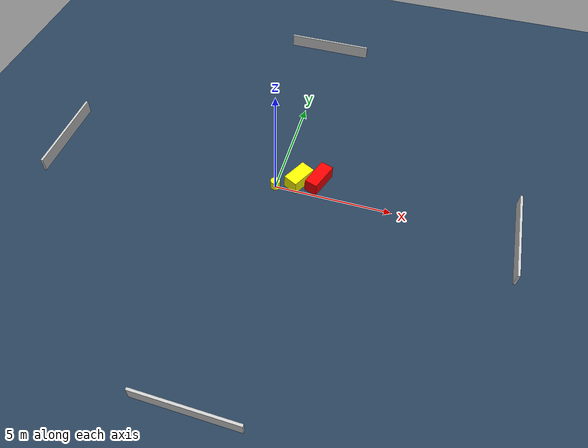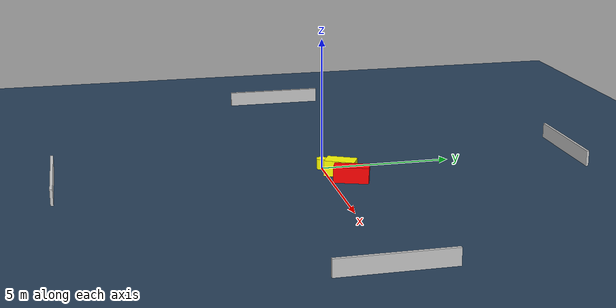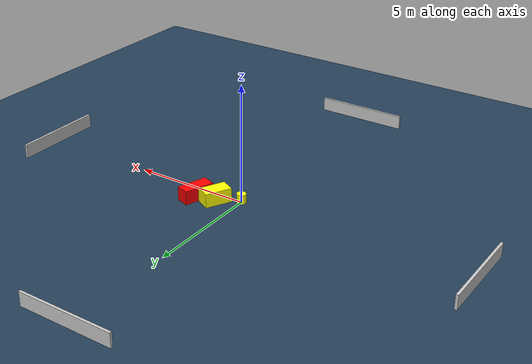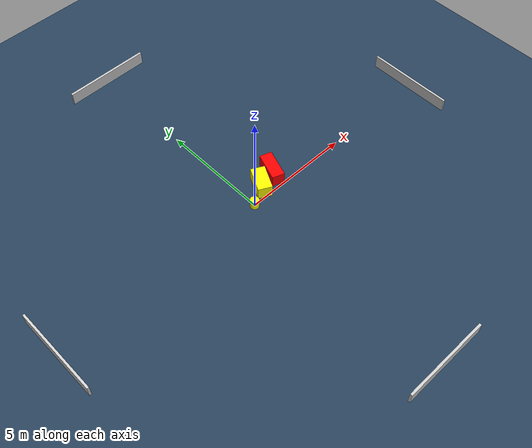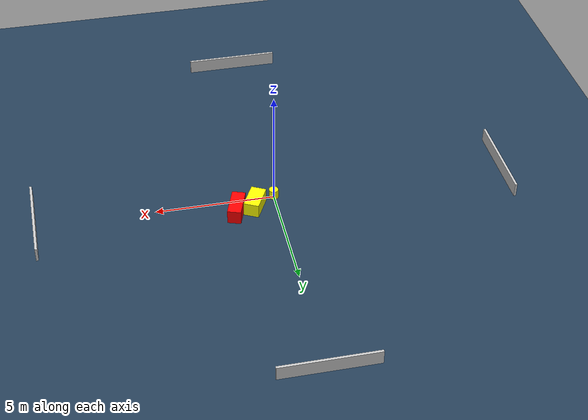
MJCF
<?xml version="1.0" ?>
<mujoco model="generated_environment">
  <option timestep="0.01" integrator="RK4" cone="elliptic"/>
  <default>
    <geom density="1"/>
  </default>
  <asset>
    <texture builtin="gradient" height="3072" name="skybox" rgb1="0.3 0.5 0.7" rgb2="0 0 0" type="skybox" width="512"/>
    <texture builtin="checker" height="300" name="groundplane" rgb1="0.2 0.3 0.4" rgb2="0.1 0.2 0.3" type="2d" width="300"/>
    <material name="groundplane" reflectance="0.2" texrepeat="5 5" texture="groundplane"/>
  </asset>
  <worldbody>
    <light dir="0 0 -1" directional="true" pos="0 0 1.5"/>
    <geom condim="3" friction="0.5 0.005 0.001" material="groundplane" name="floor" pos="0 0 0" size="0 0 0.05" type="plane"/>
    <body name="walls">
      <geom name="wall_1" condim="4" pos="-10.0 0.0 0.3" rgba="0.800000011920929 0.800000011920929 0.800000011920929 1.0" size="0.05 2.0 0.3" type="box"/>
      <geom name="wall_2" condim="4" pos="10.0 0.0 0.3" rgba="0.800000011920929 0.800000011920929 0.800000011920929 1.0" size="0.05 2.0 0.3" type="box"/>
      <geom name="wall_3" condim="4" pos="0.0 -10.0 0.3" rgba="0.800000011920929 0.800000011920929 0.800000011920929 1.0" size="2.0 0.05 0.3" type="box"/>
      <geom name="wall_4" condim="4" pos="0.0 10.0 0.3" rgba="0.800000011920929 0.800000011920929 0.800000011920929 1.0" size="2.0 0.05 0.3" type="box"/>
    </body>
    <body name="robot">
      <joint name="joint_x" type="slide" pos="0 0 0" axis="1 0 0"/>
      <joint name="joint_y" type="slide" pos="0 0 0" axis="0 1 0"/>
      <geom name="robot" type="cylinder" pos="0.0 0.0 0.2" size="0.2 0.2 0.0" mass="5.0" friction="1.0 0.005 0.0001" condim="4" rgba="1.0 1.0 0.0 1.0"/>
    </body>
    <body name="obstacle_1_movable">
      <geom name="obstacle_1_movable" condim="4" pos="0.9007492839163291 0.530056677753008 0.3" euler="0 0 332.7552887083778" friction="0.0 0.005 0.001" rgba="1.0 1.0 0.0 1.0" size="0.321227483168685 0.5775249702363332 0.3" type="box" mass="0.1"/>
      <joint type="free"/>
    </body>
    <body name="obstacle_2_static">
      <geom name="obstacle_2_static" condim="4" pos="1.7215017395960122 0.7332537827967728 0.3" euler="0 0 340.94567575280524" friction="0.0 0.005 0.001" rgba="1.0 0.0 0.0 1.0" size="0.2833294377791509 0.653560187291339 0.3" type="box"/>
    </body>
  </worldbody>
  <actuator>
    <motor name="actuator_x" joint="joint_x" gear="1" ctrlrange="-1 1"/>
    <motor name="actuator_y" joint="joint_y" gear="1" ctrlrange="-1 1"/>
  </actuator>
</mujoco>
